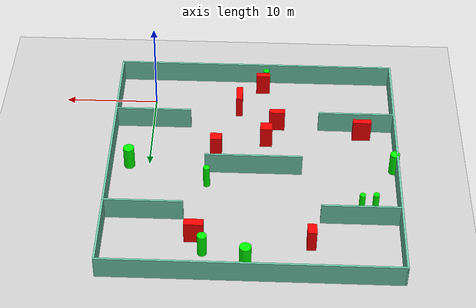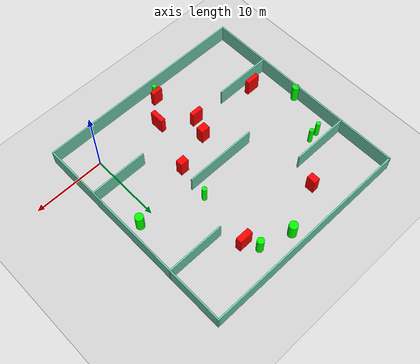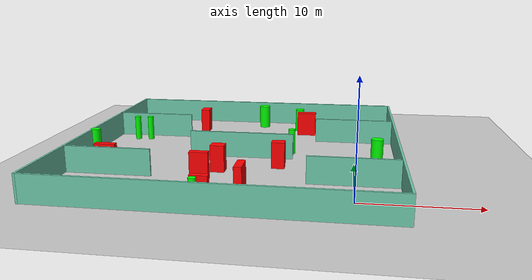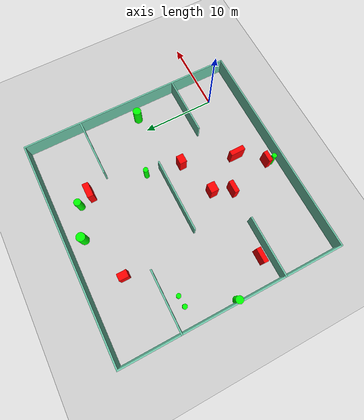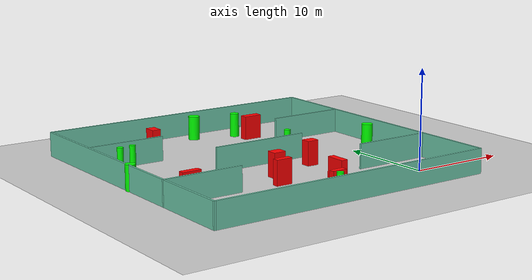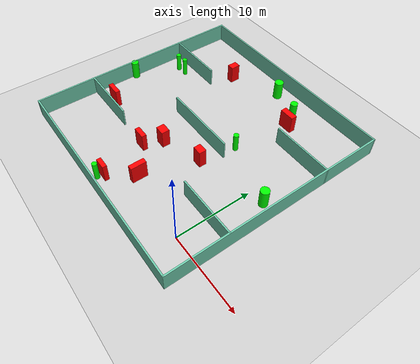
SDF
<sdf version="1.7">
 <world name="default">
  <light name="sun" type="directional">
   <pose>0 0 10 0 -0 0</pose>
   <diffuse>0.8 0.8 0.8 1</diffuse>
   <specular>0.2 0.2 0.2 1</specular>
   <attenuation>
    <range>1000</range>
    <constant>0.9</constant>
    <linear>0.01</linear>
    <quadratic>0.001</quadratic>
   </attenuation>
   <direction>-0.5 0.1 -0.9</direction>
   <spot><inner_angle>0</inner_angle><outer_angle>0</outer_angle><falloff>0</falloff></spot>
  </light>
  <model name="ground_plane">
   <static>1</static>
   <link name="link">
    <collision name="collision">
     <geometry><plane><normal>0 0 1</normal><size>100 100</size></plane></geometry>
     <surface>
      <contact><collide_bitmask>65535</collide_bitmask></contact>
      <friction><ode><mu>100</mu><mu2>50</mu2></ode></friction>
     </surface>
    </collision>
    <visual name="visual">
     <cast_shadows>0</cast_shadows>
     <geometry><plane><normal>0 0 1</normal><size>100 100</size></plane></geometry>
     <material>
      <script><uri>file://media/materials/scripts/gazebo.material</uri><name>Gazebo/Grey</name></script>
     </material>
    </visual>
   </link>
  </model>
  <gravity>0 0 -9.8</gravity>
  <magnetic_field>6e-06 2.3e-05 -4.2e-05</magnetic_field>
  <atmosphere type="adiabatic"/>
  <physics type="ode">
   <max_step_size>0.001</max_step_size>
   <real_time_factor>1</real_time_factor>
   <real_time_update_rate>1000</real_time_update_rate>
  </physics>
  <scene><ambient>0.4 0.4 0.4 1</ambient><background>0.7 0.7 0.7 1</background><shadows>1</shadows></scene>
  <spherical_coordinates>
   <surface_model>EARTH_WGS84</surface_model>
   <latitude_deg>0</latitude_deg>
   <longitude_deg>0</longitude_deg>
   <elevation>0</elevation>
   <heading_deg>0</heading_deg>
  </spherical_coordinates>
  <model name="my_base_walls">
   <link name="Wall_10">
    <collision name="Wall_10_Collision">
     <geometry><box><size>8.2 0.2 2.5</size></box></geometry>
     <pose>0 0 1.25 0 -0 0</pose>
    </collision>
    <visual name="Wall_10_Visual">
     <pose>0 0 1.25 0 -0 0</pose>
     <geometry><box><size>8.2 0.2 2.5</size></box></geometry>
     <material>
      <script><uri>file://media/materials/scripts/gazebo.material</uri><name>Gazebo/Grey</name></script>
      <ambient>0.435294 0.796078 0.67451 1</ambient>
     </material>
     <meta><layer>0</layer></meta>
    </visual>
    <pose>-11 -7 0 0 -0 0</pose>
   </link>
   <link name="Wall_12">
    <collision name="Wall_12_Collision">
     <geometry><box><size>8.2 0.2 2.5</size></box></geometry>
     <pose>0 0 1.25 0 -0 0</pose>
    </collision>
    <visual name="Wall_12_Visual">
     <pose>0 0 1.25 0 -0 0</pose>
     <geometry><box><size>8.2 0.2 2.5</size></box></geometry>
     <material>
      <script><uri>file://media/materials/scripts/gazebo.material</uri><name>Gazebo/Grey</name></script>
      <ambient>0.435294 0.796078 0.67451 1</ambient>
     </material>
     <meta><layer>0</layer></meta>
    </visual>
    <pose>-11 7 0 0 -0 0</pose>
   </link>
   <link name="Wall_14">
    <collision name="Wall_14_Collision">
     <geometry><box><size>8.2 0.2 2.5</size></box></geometry>
     <pose>0 0 1.25 0 -0 0</pose>
    </collision>
    <visual name="Wall_14_Visual">
     <pose>0 0 1.25 0 -0 0</pose>
     <geometry><box><size>8.2 0.2 2.5</size></box></geometry>
     <material>
      <script><uri>file://media/materials/scripts/gazebo.material</uri><name>Gazebo/Grey</name></script>
      <ambient>0.435294 0.796078 0.67451 1</ambient>
     </material>
     <meta><layer>0</layer></meta>
    </visual>
    <pose>11 7 0 0 -0 3.14159</pose>
   </link>
   <link name="Wall_16">
    <collision name="Wall_16_Collision">
     <geometry><box><size>10.2 0.2 2.5</size></box></geometry>
     <pose>0 0 1.25 0 -0 0</pose>
    </collision>
    <visual name="Wall_16_Visual">
     <pose>0 0 1.25 0 -0 0</pose>
     <geometry><box><size>10.2 0.2 2.5</size></box></geometry>
     <material>
      <script><uri>file://media/materials/scripts/gazebo.material</uri><name>Gazebo/Grey</name></script>
      <ambient>0.435294 0.796078 0.67451 1</ambient>
     </material>
     <meta><layer>0</layer></meta>
    </visual>
    <pose>0 0 0 0 -0 3.14159</pose>
   </link>
   <link name="Wall_2">
    <collision name="Wall_2_Collision">
     <geometry><box><size>30.2 0.2 2.5</size></box></geometry>
     <pose>0 0 1.25 0 -0 0</pose>
    </collision>
    <visual name="Wall_2_Visual">
     <pose>0 0 1.25 0 -0 0</pose>
     <geometry><box><size>30.2 0.2 2.5</size></box></geometry>
     <material>
      <script><uri>file://media/materials/scripts/gazebo.material</uri><name>Gazebo/Grey</name></script>
      <ambient>0.435294 0.796078 0.67451 1</ambient>
     </material>
     <meta><layer>0</layer></meta>
    </visual>
    <pose>0 -15 0 0 -0 3.14159</pose>
   </link>
   <link name="Wall_3">
    <collision name="Wall_3_Collision">
     <geometry><box><size>30.2 0.2 2.5</size></box></geometry>
     <pose>0 0 1.25 0 -0 0</pose>
    </collision>
    <visual name="Wall_3_Visual">
     <pose>0 0 1.25 0 -0 0</pose>
     <geometry><box><size>30.2 0.2 2.5</size></box></geometry>
     <material>
      <script><uri>file://media/materials/scripts/gazebo.material</uri><name>Gazebo/Grey</name></script>
      <ambient>0.435294 0.796078 0.67451 1</ambient>
     </material>
     <meta><layer>0</layer></meta>
    </visual>
    <pose>-15 0 0 0 -0 1.5708</pose>
   </link>
   <link name="Wall_4">
    <collision name="Wall_4_Collision">
     <geometry><box><size>30.2 0.2 2.5</size></box></geometry>
     <pose>0 0 1.25 0 -0 0</pose>
    </collision>
    <visual name="Wall_4_Visual">
     <pose>0 0 1.25 0 -0 0</pose>
     <geometry><box><size>30.2 0.2 2.5</size></box></geometry>
     <material>
      <script><uri>file://media/materials/scripts/gazebo.material</uri><name>Gazebo/Grey</name></script>
      <ambient>0.435294 0.796078 0.67451 1</ambient>
     </material>
     <meta><layer>0</layer></meta>
    </visual>
    <pose>0 15 0 0 -0 0</pose>
   </link>
   <link name="Wall_6">
    <collision name="Wall_6_Collision">
     <geometry><box><size>30.2 0.2 2.5</size></box></geometry>
     <pose>0 0 1.25 0 -0 0</pose>
    </collision>
    <visual name="Wall_6_Visual">
     <pose>0 0 1.25 0 -0 0</pose>
     <geometry><box><size>30.2 0.2 2.5</size></box></geometry>
     <material>
      <script><uri>file://media/materials/scripts/gazebo.material</uri><name>Gazebo/Grey</name></script>
      <ambient>0.435294 0.796078 0.67451 1</ambient>
     </material>
     <meta><layer>0</layer></meta>
    </visual>
    <pose>15 0 0 0 -0 1.5708</pose>
   </link>
   <link name="Wall_8">
    <collision name="Wall_8_Collision">
     <geometry><box><size>8.2 0.2 2.5</size></box></geometry>
     <pose>0 0 1.25 0 -0 0</pose>
    </collision>
    <visual name="Wall_8_Visual">
     <pose>0 0 1.25 0 -0 0</pose>
     <geometry><box><size>8.2 0.2 2.5</size></box></geometry>
     <material>
      <script><uri>file://media/materials/scripts/gazebo.material</uri><name>Gazebo/Grey</name></script>
      <ambient>0.435294 0.796078 0.67451 1</ambient>
     </material>
     <meta><layer>0</layer></meta>
    </visual>
    <pose>11 -7 0 0 -0 3.14159</pose>
   </link>
   <static>1</static>
   <pose>-11 11 0 0 -0 0</pose>
  </model>
  <model name="cylinder1">
   <static>1</static>
   <link name="link">
    <inertial>
     <mass>1</mass>
     <inertia><ixx>0.5</ixx><ixy>0</ixy><ixz>0</ixz><iyy>0.5</iyy><iyz>0</iyz><izz>1</izz></inertia>
    </inertial>
    <collision name="collision">
     <geometry><cylinder><radius>0.3255458057028618</radius><length>2.5</length></cylinder></geometry>
    </collision>
    <visual name="visual">
     <geometry><cylinder><radius>0.3255458057028618</radius><length>2.5</length></cylinder></geometry>
     <material>
      <ambient>0 1 0 1</ambient>
      <diffuse>0 1 0 1</diffuse>
      <specular>0.1 0.1 0.1 1</specular>
      <emissive>0 0 0 0</emissive>
     </material>
    </visual>
   </link>
   <pose>-12.175322553520601 -2.9891674499211787 1.25 0 0 0</pose>
  </model>
  <model name="cylinder2">
   <static>1</static>
   <link name="link">
    <inertial>
     <mass>1</mass>
     <inertia><ixx>0.5</ixx><ixy>0</ixy><ixz>0</ixz><iyy>0.5</iyy><iyz>0</iyz><izz>1</izz></inertia>
    </inertial>
    <collision name="collision">
     <geometry><cylinder><radius>0.47828106755260014</radius><length>2.5</length></cylinder></geometry>
    </collision>
    <visual name="visual">
     <geometry><cylinder><radius>0.47828106755260014</radius><length>2.5</length></cylinder></geometry>
     <material>
      <ambient>0 1 0 1</ambient>
      <diffuse>0 1 0 1</diffuse>
      <specular>0.1 0.1 0.1 1</specular>
      <emissive>0 0 0 0</emissive>
     </material>
    </visual>
   </link>
   <pose>-6.199923289797905 22.623636407045762 1.25 0 0 0</pose>
  </model>
  <model name="cylinder3">
   <static>1</static>
   <link name="link">
    <inertial>
     <mass>1</mass>
     <inertia><ixx>0.5</ixx><ixy>0</ixy><ixz>0</ixz><iyy>0.5</iyy><iyz>0</iyz><izz>1</izz></inertia>
    </inertial>
    <collision name="collision">
     <geometry><cylinder><radius>0.5718679384348646</radius><length>2.5</length></cylinder></geometry>
    </collision>
    <visual name="visual">
     <geometry><cylinder><radius>0.5718679384348646</radius><length>2.5</length></cylinder></geometry>
     <material>
      <ambient>0 1 0 1</ambient>
      <diffuse>0 1 0 1</diffuse>
      <specular>0.1 0.1 0.1 1</specular>
      <emissive>0 0 0 0</emissive>
     </material>
    </visual>
   </link>
   <pose>2.09548541279052 10.369106745927368 1.25 0 0 0</pose>
  </model>
  <model name="cylinder4">
   <static>1</static>
   <link name="link">
    <inertial>
     <mass>1</mass>
     <inertia><ixx>0.5</ixx><ixy>0</ixy><ixz>0</ixz><iyy>0.5</iyy><iyz>0</iyz><izz>1</izz></inertia>
    </inertial>
    <collision name="collision">
     <geometry><cylinder><radius>0.591485281949728</radius><length>2.5</length></cylinder></geometry>
    </collision>
    <visual name="visual">
     <geometry><cylinder><radius>0.591485281949728</radius><length>2.5</length></cylinder></geometry>
     <material>
      <ambient>0 1 0 1</ambient>
      <diffuse>0 1 0 1</diffuse>
      <specular>0.1 0.1 0.1 1</specular>
      <emissive>0 0 0 0</emissive>
     </material>
    </visual>
   </link>
   <pose>-10.485251177232797 23.942436584166888 1.25 0 0 0</pose>
  </model>
  <model name="cylinder5">
   <static>1</static>
   <link name="link">
    <inertial>
     <mass>1</mass>
     <inertia><ixx>0.5</ixx><ixy>0</ixy><ixz>0</ixz><iyy>0.5</iyy><iyz>0</iyz><izz>1</izz></inertia>
    </inertial>
    <collision name="collision">
     <geometry><cylinder><radius>0.3140770785405461</radius><length>2.5</length></cylinder></geometry>
    </collision>
    <visual name="visual">
     <geometry><cylinder><radius>0.3140770785405461</radius><length>2.5</length></cylinder></geometry>
     <material>
      <ambient>0 1 0 1</ambient>
      <diffuse>0 1 0 1</diffuse>
      <specular>0.1 0.1 0.1 1</specular>
      <emissive>0 0 0 0</emissive>
     </material>
    </visual>
   </link>
   <pose>-23.50738704728049 16.290436910862258 1.25 0 0 0</pose>
  </model>
  <model name="cylinder6">
   <static>1</static>
   <link name="link">
    <inertial>
     <mass>1</mass>
     <inertia><ixx>0.5</ixx><ixy>0</ixy><ixz>0</ixz><iyy>0.5</iyy><iyz>0</iyz><izz>1</izz></inertia>
    </inertial>
    <collision name="collision">
     <geometry><cylinder><radius>0.49859028680529627</radius><length>2.5</length></cylinder></geometry>
    </collision>
    <visual name="visual">
     <geometry><cylinder><radius>0.49859028680529627</radius><length>2.5</length></cylinder></geometry>
     <material>
      <ambient>0 1 0 1</ambient>
      <diffuse>0 1 0 1</diffuse>
      <specular>0.1 0.1 0.1 1</specular>
      <emissive>0 0 0 0</emissive>
     </material>
    </visual>
   </link>
   <pose>-25.745526852174738 10.28545834087312 1.25 0 0 0</pose>
  </model>
  <model name="cylinder7">
   <static>1</static>
   <link name="link">
    <inertial>
     <mass>1</mass>
     <inertia><ixx>0.5</ixx><ixy>0</ixy><ixz>0</ixz><iyy>0.5</iyy><iyz>0</iyz><izz>1</izz></inertia>
    </inertial>
    <collision name="collision">
     <geometry><cylinder><radius>0.30236931892379754</radius><length>2.5</length></cylinder></geometry>
    </collision>
    <visual name="visual">
     <geometry><cylinder><radius>0.30236931892379754</radius><length>2.5</length></cylinder></geometry>
     <material>
      <ambient>0 1 0 1</ambient>
      <diffuse>0 1 0 1</diffuse>
      <specular>0.1 0.1 0.1 1</specular>
      <emissive>0 0 0 0</emissive>
     </material>
    </visual>
   </link>
   <pose>-22.11329400311647 16.39361386564599 1.25 0 0 0</pose>
  </model>
  <model name="cylinder8">
   <static>1</static>
   <link name="link">
    <inertial>
     <mass>1</mass>
     <inertia><ixx>0.5</ixx><ixy>0</ixy><ixz>0</ixz><iyy>0.5</iyy><iyz>0</iyz><izz>1</izz></inertia>
    </inertial>
    <collision name="collision">
     <geometry><cylinder><radius>0.33926832008164043</radius><length>2.5</length></cylinder></geometry>
    </collision>
    <visual name="visual">
     <geometry><cylinder><radius>0.33926832008164043</radius><length>2.5</length></cylinder></geometry>
     <material>
      <ambient>0 1 0 1</ambient>
      <diffuse>0 1 0 1</diffuse>
      <specular>0.1 0.1 0.1 1</specular>
      <emissive>0 0 0 0</emissive>
     </material>
    </visual>
   </link>
   <pose>-6.202737946596887 13.022128279142152 1.25 0 0 0</pose>
  </model>
  <model name="box1">
   <static>1</static>
   <link name="link">
    <inertial>
     <mass>1</mass>
     <inertia><ixx>0.083</ixx><ixy>0</ixy><ixz>0</ixz><iyy>0.083</iyy><iyz>0</iyz><izz>0.083</izz></inertia>
    </inertial>
    <collision name="collision">
     <geometry><box><size>1.2925156319657582 1.0718475161275367 2.5</size></box></geometry>
    </collision>
    <visual name="visual">
     <geometry><box><size>1.2925156319657582 1.0718475161275367 2.5</size></box></geometry>
     <material>
      <ambient>1 0 0 1</ambient>
      <diffuse>1 0 0 1</diffuse>
      <specular>0.1 0.1 0.1 1</specular>
      <emissive>0 0 0 0</emissive>
     </material>
    </visual>
    <sensor name="my_contact" type="contact">
     <contact><collision>box_collision</collision><topic>__default_topic__</topic></contact>
    </sensor>
   </link>
   <pose>-12.291115414827999 6.380733361756697 1.25 0 0 0</pose>
  </model>
  <model name="box2">
   <static>1</static>
   <link name="link">
    <inertial>
     <mass>1</mass>
     <inertia><ixx>0.083</ixx><ixy>0</ixy><ixz>0</ixz><iyy>0.083</iyy><iyz>0</iyz><izz>0.083</izz></inertia>
    </inertial>
    <collision name="collision">
     <geometry><box><size>0.6856897964576142 2.0291291237283104 2.5</size></box></geometry>
    </collision>
    <visual name="visual">
     <geometry><box><size>0.6856897964576142 2.0291291237283104 2.5</size></box></geometry>
     <material>
      <ambient>1 0 0 1</ambient>
      <diffuse>1 0 0 1</diffuse>
      <specular>0.1 0.1 0.1 1</specular>
      <emissive>0 0 0 0</emissive>
     </material>
    </visual>
    <sensor name="my_contact" type="contact">
     <contact><collision>box_collision</collision><topic>__default_topic__</topic></contact>
    </sensor>
   </link>
   <pose>-9.285070683825076 1.000899885546282 1.25 0 0 0</pose>
  </model>
  <model name="box3">
   <static>1</static>
   <link name="link">
    <inertial>
     <mass>1</mass>
     <inertia><ixx>0.083</ixx><ixy>0</ixy><ixz>0</ixz><iyy>0.083</iyy><iyz>0</iyz><izz>0.083</izz></inertia>
    </inertial>
    <collision name="collision">
     <geometry><box><size>1.6906668323827572 0.6313209662345597 2.5</size></box></geometry>
    </collision>
    <visual name="visual">
     <geometry><box><size>1.6906668323827572 0.6313209662345597 2.5</size></box></geometry>
     <material>
      <ambient>1 0 0 1</ambient>
      <diffuse>1 0 0 1</diffuse>
      <specular>0.1 0.1 0.1 1</specular>
      <emissive>0 0 0 0</emissive>
     </material>
    </visual>
    <sensor name="my_contact" type="contact">
     <contact><collision>box_collision</collision><topic>__default_topic__</topic></contact>
    </sensor>
   </link>
   <pose>-13.425901042216989 3.887860205246078 1.25 0 0 0</pose>
  </model>
  <model name="box4">
   <static>1</static>
   <link name="link">
    <inertial>
     <mass>1</mass>
     <inertia><ixx>0.083</ixx><ixy>0</ixy><ixz>0</ixz><iyy>0.083</iyy><iyz>0</iyz><izz>0.083</izz></inertia>
    </inertial>
    <collision name="collision">
     <geometry><box><size>1.9486573567590595 0.6219120364844177 2.5</size></box></geometry>
    </collision>
    <visual name="visual">
     <geometry><box><size>1.9486573567590595 0.6219120364844177 2.5</size></box></geometry>
     <material>
      <ambient>1 0 0 1</ambient>
      <diffuse>1 0 0 1</diffuse>
      <specular>0.1 0.1 0.1 1</specular>
      <emissive>0 0 0 0</emissive>
     </material>
    </visual>
    <sensor name="my_contact" type="contact">
     <contact><collision>box_collision</collision><topic>__default_topic__</topic></contact>
    </sensor>
   </link>
   <pose>-22.549699148609154 5.2204612130490915 1.25 0 0 0</pose>
  </model>
  <model name="box5">
   <static>1</static>
   <link name="link">
    <inertial>
     <mass>1</mass>
     <inertia><ixx>0.083</ixx><ixy>0</ixy><ixz>0</ixz><iyy>0.083</iyy><iyz>0</iyz><izz>0.083</izz></inertia>
    </inertial>
    <collision name="collision">
     <geometry><box><size>1.9681016359451655 0.8274632271935569 2.5</size></box></geometry>
    </collision>
    <visual name="visual">
     <geometry><box><size>1.9681016359451655 0.8274632271935569 2.5</size></box></geometry>
     <material>
      <ambient>1 0 0 1</ambient>
      <diffuse>1 0 0 1</diffuse>
      <specular>0.1 0.1 0.1 1</specular>
      <emissive>0 0 0 0</emissive>
     </material>
    </visual>
    <sensor name="my_contact" type="contact">
     <contact><collision>box_collision</collision><topic>__default_topic__</topic></contact>
    </sensor>
   </link>
   <pose>-5.280756128938245 20.819555284074973 1.25 0 0 0</pose>
  </model>
  <model name="box6">
   <static>1</static>
   <link name="link">
    <inertial>
     <mass>1</mass>
     <inertia><ixx>0.083</ixx><ixy>0</ixy><ixz>0</ixz><iyy>0.083</iyy><iyz>0</iyz><izz>0.083</izz></inertia>
    </inertial>
    <collision name="collision">
     <geometry><box><size>1.2232857779357755 0.9772792700739495 2.5</size></box></geometry>
    </collision>
    <visual name="visual">
     <geometry><box><size>1.2232857779357755 0.9772792700739495 2.5</size></box></geometry>
     <material>
      <ambient>1 0 0 1</ambient>
      <diffuse>1 0 0 1</diffuse>
      <specular>0.1 0.1 0.1 1</specular>
      <emissive>0 0 0 0</emissive>
     </material>
    </visual>
    <sensor name="my_contact" type="contact">
     <contact><collision>box_collision</collision><topic>__default_topic__</topic></contact>
    </sensor>
   </link>
   <pose>-6.979349039130792 8.162100841358841 1.25 0 0 0</pose>
  </model>
  <model name="box7">
   <static>1</static>
   <link name="link">
    <inertial>
     <mass>1</mass>
     <inertia><ixx>0.083</ixx><ixy>0</ixy><ixz>0</ixz><iyy>0.083</iyy><iyz>0</iyz><izz>0.083</izz></inertia>
    </inertial>
    <collision name="collision">
     <geometry><box><size>0.9279345734086807 1.275934552288208 2.5</size></box></geometry>
    </collision>
    <visual name="visual">
     <geometry><box><size>0.9279345734086807 1.275934552288208 2.5</size></box></geometry>
     <material>
      <ambient>1 0 0 1</ambient>
      <diffuse>1 0 0 1</diffuse>
      <specular>0.1 0.1 0.1 1</specular>
      <emissive>0 0 0 0</emissive>
     </material>
    </visual>
    <sensor name="my_contact" type="contact">
     <contact><collision>box_collision</collision><topic>__default_topic__</topic></contact>
    </sensor>
   </link>
   <pose>-16.991647451287243 21.260862337679082 1.25 0 0 0</pose>
  </model>
  <model name="box8">
   <static>1</static>
   <link name="link">
    <inertial>
     <mass>1</mass>
     <inertia><ixx>0.083</ixx><ixy>0</ixy><ixz>0</ixz><iyy>0.083</iyy><iyz>0</iyz><izz>0.083</izz></inertia>
    </inertial>
    <collision name="collision">
     <geometry><box><size>1.4970681721657724 0.5744160157563741 2.5</size></box></geometry>
    </collision>
    <visual name="visual">
     <geometry><box><size>1.4970681721657724 0.5744160157563741 2.5</size></box></geometry>
     <material>
      <ambient>1 0 0 1</ambient>
      <diffuse>1 0 0 1</diffuse>
      <specular>0.1 0.1 0.1 1</specular>
      <emissive>0 0 0 0</emissive>
     </material>
    </visual>
    <sensor name="my_contact" type="contact">
     <contact><collision>box_collision</collision><topic>__default_topic__</topic></contact>
    </sensor>
   </link>
   <pose>-11.846126448746986 -2.23362267645796 1.25 0 0 0</pose>
  </model>
 </world>
</sdf>
